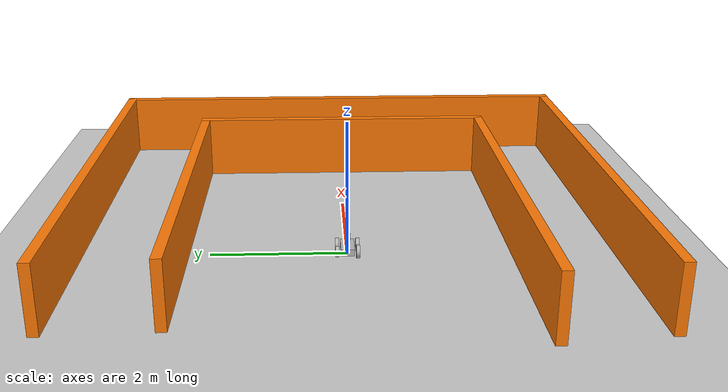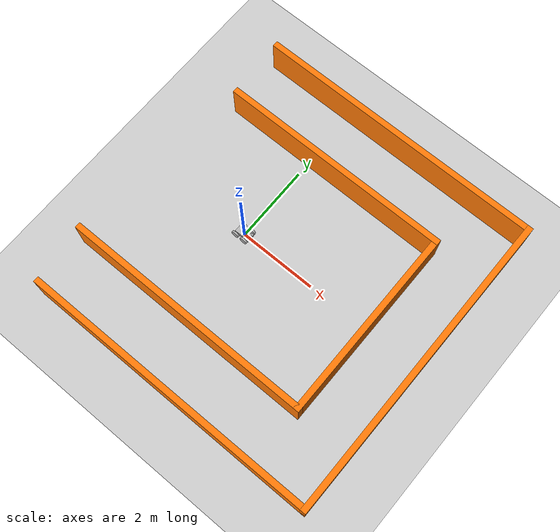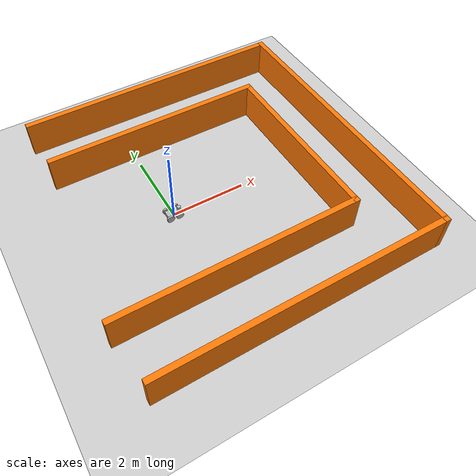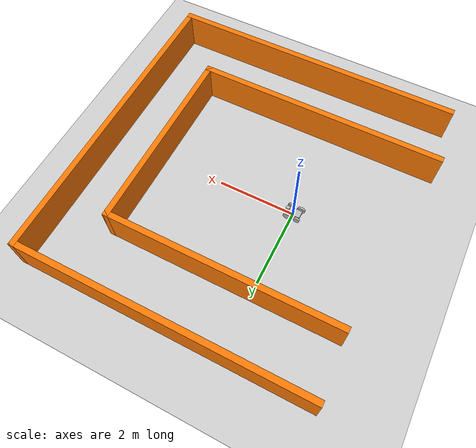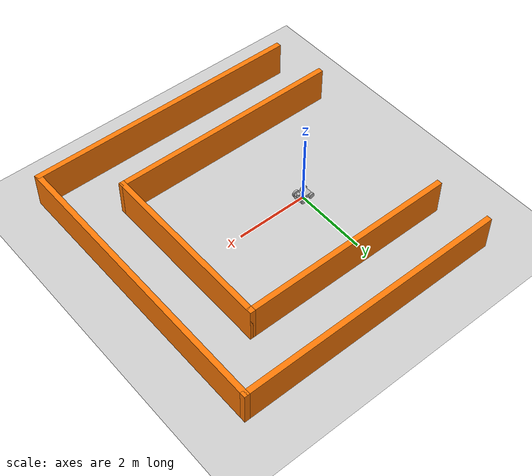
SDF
<sdf version="1.6">
 <world name="default">
  <model name="ground_plane">
   <static>1</static>
   <link name="link">
    <collision name="collision">
     <geometry><plane><normal>0 0 1</normal><size>100 100</size></plane></geometry>
     <surface><friction><ode><mu>100</mu><mu2>50</mu2></ode></friction></surface>
    </collision>
    <visual name="visual">
     <cast_shadows>0</cast_shadows>
     <geometry><plane><normal>0 0 1</normal><size>100 100</size></plane></geometry>
     <material>
      <script><uri>file://media/materials/scripts/gazebo.material</uri><name>Gazebo/Grey</name></script>
     </material>
    </visual>
   </link>
  </model>
  <light name="sun" type="directional">
   <pose>0 0 10 0 -0 0</pose>
   <diffuse>0.8 0.8 0.8 1</diffuse>
   <specular>0.1 0.1 0.1 1</specular>
   <attenuation>
    <range>1000</range>
    <constant>0.9</constant>
    <linear>0.01</linear>
    <quadratic>0.001</quadratic>
   </attenuation>
   <direction>-0.5 0.5 -1</direction>
  </light>
  <gravity>0 0 -9.8</gravity>
  <magnetic_field>6e-06 2.3e-05 -4.2e-05</magnetic_field>
  <atmosphere type="adiabatic"/>
  <physics name="default_physics" default="0" type="ode">
   <max_step_size>0.001</max_step_size>
   <real_time_factor>1</real_time_factor>
   <real_time_update_rate>1000</real_time_update_rate>
  </physics>
  <scene><ambient>0.4 0.4 0.4 1</ambient><background>0.7 0.7 0.7 1</background><shadows>1</shadows></scene>
  <spherical_coordinates>
   <surface_model>EARTH_WGS84</surface_model>
   <latitude_deg>0</latitude_deg>
   <longitude_deg>0</longitude_deg>
   <elevation>0</elevation>
   <heading_deg>0</heading_deg>
  </spherical_coordinates>
  <model name="mybot">
   <link name="chassis">
    <inertial>
     <pose>0.013636 0 0.1 0 -0 0</pose>
     <mass>11</mass>
     <inertia>
      <ixx>0.52</ixx>
      <ixy>0</ixy>
      <ixz>1.73472e-18</ixz>
      <iyy>1.04045</iyy>
      <iyz>0</iyz>
      <izz>0.140455</izz>
     </inertia>
    </inertial>
    <collision name="chassis_fixed_joint_lump__collision_collision">
     <geometry><box><size>0.4 0.2 0.1</size></box></geometry>
    </collision>
    <collision name="chassis_fixed_joint_lump__sensor_laser_collision_1">
     <pose>0.15 0 0.1 0 -0 0</pose>
     <geometry><cylinder><length>0.1</length><radius>0.05</radius></cylinder></geometry>
    </collision>
    <visual name="chassis_visual_visual"><geometry><box><size>0.4 0.2 0.1</size></box></geometry></visual>
    <visual name="chassis_fixed_joint_lump__sensor_laser_visual_1">
     <pose>0.15 0 0.1 0 -0 0</pose>
     <geometry><cylinder><length>0.1</length><radius>0.05</radius></cylinder></geometry>
     <material><script><uri>__default__</uri><name>__default__</name></script></material>
    </visual>
    <sensor name="head_hokuyo_sensor" type="ray">
     <visualize>1</visualize>
     <update_rate>20</update_rate>
     <ray>
      <scan>
       <horizontal>
        <samples>720</samples>
        <resolution>1</resolution>
        <min_angle>-1.5708</min_angle>
        <max_angle>1.5708</max_angle>
       </horizontal>
       <vertical><samples>1</samples><min_angle>0</min_angle><max_angle>0</max_angle></vertical>
      </scan>
      <range><min>0.1</min><max>10</max><resolution>0.01</resolution></range>
      <noise><type>gaussian</type><mean>0</mean><stddev>0.01</stddev></noise>
     </ray>
     <plugin name="gazebo_ros_head_hokuyo_controller" filename="libgazebo_ros_laser.so">
      <topicName>/m2wr/laser/scan</topicName>
      <frameName>sensor_laser</frameName>
      <robotNamespace>/</robotNamespace>
     </plugin>
     <pose>0.15 0 0.1 0 -0 0</pose>
    </sensor>
   </link>
   <link name="left_wheel">
    <pose>0.1 0.15 0 0 -0 0</pose>
    <inertial>
     <pose>0 0 0 -0 1.5707 1.5707</pose>
     <mass>5</mass>
     <inertia><ixx>1</ixx><ixy>0</ixy><ixz>0</ixz><iyy>1</iyy><iyz>0</iyz><izz>1</izz></inertia>
    </inertial>
    <collision name="left_wheel_fixed_joint_lump__collision_collision">
     <pose>0 0 0 3.14159 1.57079 -1.57089</pose>
     <geometry><cylinder><length>0.05</length><radius>0.1</radius></cylinder></geometry>
    </collision>
    <visual name="left_wheel_visual_visual">
     <pose>0 0 0 3.14159 1.57079 -1.57089</pose>
     <geometry><cylinder><length>0.05</length><radius>0.1</radius></cylinder></geometry>
    </visual>
   </link>
   <joint name="left_wheel_hinge" type="revolute">
    <child>left_wheel</child>
    <parent>chassis</parent>
    <axis>
     <xyz>0 1 0</xyz>
     <limit><lower>-1e+16</lower><upper>1e+16</upper></limit>
     <dynamics><spring_reference>0</spring_reference><spring_stiffness>0</spring_stiffness></dynamics>
     <use_parent_model_frame>1</use_parent_model_frame>
    </axis>
   </joint>
   <link name="left_wheebl">
    <pose>-0.15 0.15 0 0 -0 0</pose>
    <inertial>
     <pose>0 0 0 -0 1.5707 1.5707</pose>
     <mass>5</mass>
     <inertia><ixx>1</ixx><ixy>0</ixy><ixz>0</ixz><iyy>1</iyy><iyz>0</iyz><izz>1</izz></inertia>
    </inertial>
    <collision name="left_wheebl_fixed_joint_lump__collision_collision">
     <pose>0 0 0 3.14159 1.57079 -1.57089</pose>
     <geometry><cylinder><length>0.05</length><radius>0.1</radius></cylinder></geometry>
    </collision>
    <visual name="left_wheebl_fixed_joint_lump__left_wheelb_visual_visual">
     <pose>0 0 0 3.14159 1.57079 -1.57089</pose>
     <geometry><cylinder><length>0.05</length><radius>0.08</radius></cylinder></geometry>
    </visual>
   </link>
   <joint name="left_wheelb_hinge" type="revolute">
    <child>left_wheebl</child>
    <parent>chassis</parent>
    <axis>
     <xyz>0 1 0</xyz>
     <limit><lower>-1e+16</lower><upper>1e+16</upper></limit>
     <dynamics><spring_reference>0</spring_reference><spring_stiffness>0</spring_stiffness></dynamics>
     <use_parent_model_frame>1</use_parent_model_frame>
    </axis>
   </joint>
   <link name="right_wheel">
    <pose>0.1 -0.15 0 0 -0 0</pose>
    <inertial>
     <pose>0 0 0 -0 1.5707 1.5707</pose>
     <mass>5</mass>
     <inertia><ixx>1</ixx><ixy>0</ixy><ixz>0</ixz><iyy>1</iyy><iyz>0</iyz><izz>1</izz></inertia>
    </inertial>
    <collision name="right_wheel_fixed_joint_lump__collision_collision">
     <pose>0 0 0 3.14159 1.57079 -1.57089</pose>
     <geometry><cylinder><length>0.05</length><radius>0.1</radius></cylinder></geometry>
    </collision>
    <visual name="right_wheel_visual_visual">
     <pose>0 0 0 3.14159 1.57079 -1.57089</pose>
     <geometry><cylinder><length>0.05</length><radius>0.1</radius></cylinder></geometry>
    </visual>
   </link>
   <joint name="right_wheel_hinge" type="revolute">
    <child>right_wheel</child>
    <parent>chassis</parent>
    <axis>
     <xyz>0 1 0</xyz>
     <limit><lower>-1e+16</lower><upper>1e+16</upper></limit>
     <dynamics><spring_reference>0</spring_reference><spring_stiffness>0</spring_stiffness></dynamics>
     <use_parent_model_frame>1</use_parent_model_frame>
    </axis>
   </joint>
   <link name="right_wheelb">
    <pose>-0.15 -0.15 0 0 -0 0</pose>
    <inertial>
     <pose>0 0 0 -0 1.5707 1.5707</pose>
     <mass>5</mass>
     <inertia><ixx>1</ixx><ixy>0</ixy><ixz>0</ixz><iyy>1</iyy><iyz>0</iyz><izz>1</izz></inertia>
    </inertial>
    <collision name="right_wheelb_fixed_joint_lump__collision_collision">
     <pose>0 0 0 3.14159 1.57079 -1.57089</pose>
     <geometry><cylinder><length>0.05</length><radius>0.1</radius></cylinder></geometry>
    </collision>
    <visual name="right_wheelb_visual_visual">
     <pose>0 0 0 3.14159 1.57079 -1.57089</pose>
     <geometry><cylinder><length>0.05</length><radius>0.1</radius></cylinder></geometry>
    </visual>
   </link>
   <joint name="right_wheelb_hinge" type="revolute">
    <child>right_wheelb</child>
    <parent>chassis</parent>
    <axis>
     <xyz>0 1 0</xyz>
     <limit><lower>-1e+16</lower><upper>1e+16</upper></limit>
     <dynamics><spring_reference>0</spring_reference><spring_stiffness>0</spring_stiffness></dynamics>
     <use_parent_model_frame>1</use_parent_model_frame>
    </axis>
   </joint>
   <static>0</static>
   <plugin name="skid_steer_drive_controller" filename="libgazebo_ros_skid_steer_drive.so">
    <updateRate>100.0</updateRate>
    <robotNamespace>/</robotNamespace>
    <leftFrontJoint>left_wheel_hinge</leftFrontJoint>
    <rightFrontJoint>right_wheel_hinge</rightFrontJoint>
    <leftRearJoint>left_wheelb_hinge</leftRearJoint>
    <rightRearJoint>right_wheelb_hinge</rightRearJoint>
    <wheelSeparation>5</wheelSeparation>
    <wheelDiameter>0.6</wheelDiameter>
    <robotBaseFrame>base_footprint</robotBaseFrame>
    <torque>20</torque>
    <topicName>/cmd_vel</topicName>
    <broadcastTF>true</broadcastTF>
    <commandTopic>/cmd_vel</commandTopic>
    <odometryTopic>/odom</odometryTopic>
    <odometryFrame>/odom</odometryFrame>
    <covariance_x>0.0001</covariance_x>
    <covariance_y>0.0001</covariance_y>
    <covariance_yaw>0.0001</covariance_yaw>
   </plugin>
   <pose>0.000151 -0.000711 0.1 1e-06 1e-06 -0.001492</pose>
  </model>
  <model name="simple_maze">
   <pose>1.189 -0.0275 0 0 -0 0</pose>
   <link name="Wall_2">
    <collision name="Wall_2_Collision">
     <geometry><box><size>7.75 0.15 1</size></box></geometry>
     <pose>0 0 0.5 0 -0 0</pose>
    </collision>
    <visual name="Wall_2_Visual">
     <pose>0 0 0.5 0 -0 0</pose>
     <geometry><box><size>7.75 0.15 1</size></box></geometry>
     <material>
      <script><uri>file://media/materials/scripts/gazebo.material</uri><name>Gazebo/Grey</name></script>
      <ambient>0.996078 0.47451 0.0196078 1</ambient>
     </material>
    </visual>
    <pose>0.091 -3.9525 0 0 -0 0</pose>
   </link>
   <link name="Wall_3">
    <collision name="Wall_3_Collision">
     <geometry><box><size>8.055 0.15 1</size></box></geometry>
     <pose>0 0 0.5 0 -0 0</pose>
    </collision>
    <visual name="Wall_3_Visual">
     <pose>0 0 0.5 0 -0 0</pose>
     <geometry><box><size>8.055 0.15 1</size></box></geometry>
     <material>
      <script><uri>file://media/materials/scripts/gazebo.material</uri><name>Gazebo/Grey</name></script>
      <ambient>0.996078 0.47451 0.0196078 1</ambient>
     </material>
    </visual>
    <pose>3.891 0 0 0 -0 1.5708</pose>
   </link>
   <link name="Wall_4">
    <collision name="Wall_4_Collision">
     <geometry><box><size>7.5 0.15 1</size></box></geometry>
     <pose>0 0 0.5 0 -0 0</pose>
    </collision>
    <visual name="Wall_4_Visual">
     <pose>0 0 0.5 0 -0 0</pose>
     <geometry><box><size>7.5 0.15 1</size></box></geometry>
     <material>
      <script><uri>file://media/materials/scripts/gazebo.material</uri><name>Gazebo/Grey</name></script>
      <ambient>0.996078 0.47451 0.0196078 1</ambient>
     </material>
    </visual>
    <pose>0.216 3.9525 0 0 -0 3.14159</pose>
   </link>
   <link name="Wall_6">
    <collision name="Wall_6_Collision">
     <geometry><box><size>6 0.15 1</size></box></geometry>
     <pose>0 0 0.5 0 -0 0</pose>
    </collision>
    <visual name="Wall_6_Visual">
     <pose>0 0 0.5 0 -0 0</pose>
     <geometry><box><size>6 0.15 1</size></box></geometry>
     <material>
      <script><uri>file://media/materials/scripts/gazebo.material</uri><name>Gazebo/Grey</name></script>
      <ambient>0.996078 0.47451 0.0196078 1</ambient>
     </material>
    </visual>
    <pose>-0.466 2.4065 0 0 -0 0</pose>
   </link>
   <link name="Wall_7">
    <collision name="Wall_7_Collision">
     <geometry><box><size>5 0.15 1</size></box></geometry>
     <pose>0 0 0.5 0 -0 0</pose>
    </collision>
    <visual name="Wall_7_Visual">
     <pose>0 0 0.5 0 -0 0</pose>
     <geometry><box><size>5 0.15 1</size></box></geometry>
     <material>
      <script><uri>file://media/materials/scripts/gazebo.material</uri><name>Gazebo/Grey</name></script>
      <ambient>0.996078 0.47451 0.0196078 1</ambient>
     </material>
    </visual>
    <pose>2.459 -0.0185 0 0 0 -1.5708</pose>
   </link>
   <link name="Wall_8">
    <collision name="Wall_8_Collision">
     <geometry><box><size>6.5 0.15 1</size></box></geometry>
     <pose>0 0 0.5 0 -0 0</pose>
    </collision>
    <visual name="Wall_8_Visual">
     <pose>0 0 0.5 0 -0 0</pose>
     <geometry><box><size>6.5 0.15 1</size></box></geometry>
     <material>
      <script><uri>file://media/materials/scripts/gazebo.material</uri><name>Gazebo/Grey</name></script>
      <ambient>0.996078 0.47451 0.0196078 1</ambient>
     </material>
    </visual>
    <pose>-0.716 -2.4435 0 0 -0 3.14159</pose>
   </link>
   <static>1</static>
  </model>
 </world>
</sdf>
